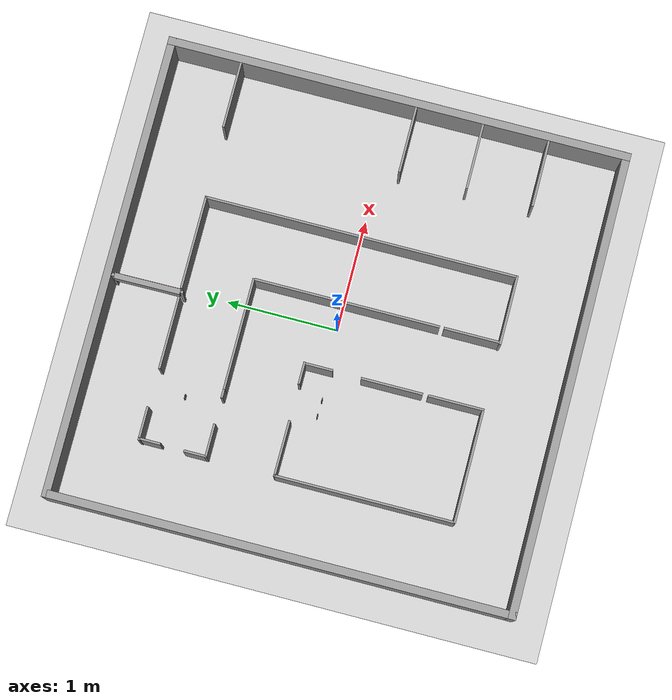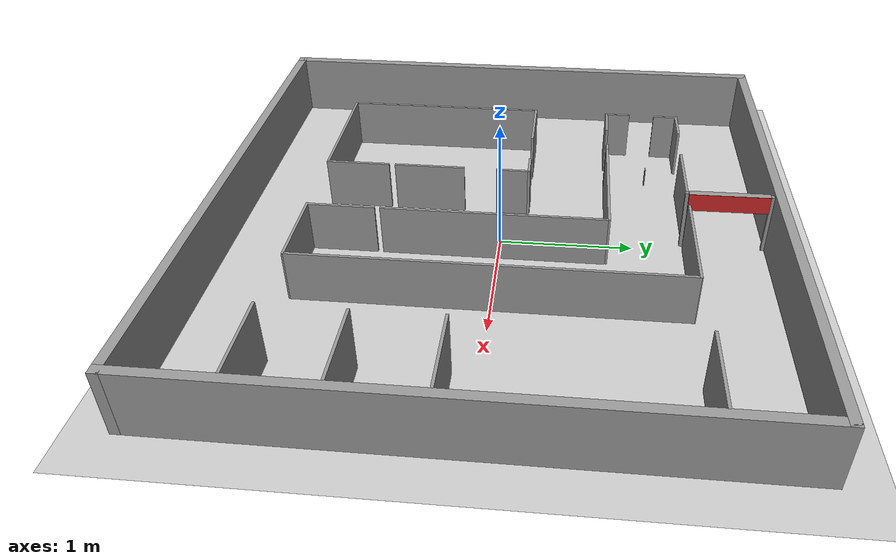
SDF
<sdf version="1.7">
 <world name="default">
  <model name="ground_plane">
   <static>1</static>
   <link name="link">
    <collision name="collision">
     <geometry><plane><normal>0 0 1</normal><size>100 100</size></plane></geometry>
     <surface>
      <contact><collide_bitmask>65535</collide_bitmask></contact>
      <friction><ode><mu>100</mu><mu2>50</mu2></ode></friction>
     </surface>
    </collision>
    <visual name="visual">
     <cast_shadows>0</cast_shadows>
     <geometry><plane><normal>0 0 1</normal><size>4.2 4.2</size></plane></geometry>
     <material><script><uri>file:///home/ros1/桌面/2/png1.material</uri><name>png1</name></script></material>
    </visual>
   </link>
  </model>
  <model name="F1">
   <link name="link_0">
    <inertial>
     <mass>1</mass>
     <inertia>
      <ixx>0.166667</ixx>
      <ixy>0</ixy>
      <ixz>0</ixz>
      <iyy>0.166667</iyy>
      <iyz>0</iyz>
      <izz>0.166667</izz>
     </inertia>
    </inertial>
    <pose>0 -0.0015 -0 0 -0 0</pose>
    <visual name="visual">
     <geometry><box><size>0.04 0.005 0.15</size></box></geometry>
     <material>
      <lighting>1</lighting>
      <script><uri>file://media/materials/scripts/gazebo.material</uri><name>Gazebo/Grey</name></script>
      <shader type="pixel"><normal_map>__default__</normal_map></shader>
      <ambient>0.3 0.3 0.3 1</ambient>
      <diffuse>0.7 0.7 0.7 1</diffuse>
      <specular>0.01 0.01 0.01 1</specular>
      <emissive>0 0 0 1</emissive>
     </material>
    </visual>
    <collision name="collision">
     <geometry><box><size>0.04 0.005 0.15</size></box></geometry>
     <surface>
      <friction>
       <ode><mu>1</mu><mu2>1</mu2><fdir1>0 0 0</fdir1><slip1>0</slip1><slip2>0</slip2></ode>
       <torsional>
        <coefficient>1</coefficient>
        <patch_radius>0</patch_radius>
        <surface_radius>0</surface_radius>
        <use_patch_radius>1</use_patch_radius>
        <ode><slip>0</slip></ode>
       </torsional>
      </friction>
      <bounce><restitution_coefficient>0</restitution_coefficient><threshold>1e+06</threshold></bounce>
      <contact>
       <collide_without_contact>0</collide_without_contact>
       <collide_without_contact_bitmask>1</collide_without_contact_bitmask>
       <collide_bitmask>1</collide_bitmask>
       <ode>
        <soft_cfm>0</soft_cfm>
        <soft_erp>0.2</soft_erp>
        <kp>1e+13</kp>
        <kd>1</kd>
        <max_vel>0.01</max_vel>
        <min_depth>0</min_depth>
       </ode>
       <bullet>
        <split_impulse>1</split_impulse>
        <split_impulse_penetration_threshold>-0.01</split_impulse_penetration_threshold>
        <soft_cfm>0</soft_cfm>
        <soft_erp>0.2</soft_erp>
        <kp>1e+13</kp>
        <kd>1</kd>
       </bullet>
      </contact>
     </surface>
    </collision>
   </link>
   <link name="link_4">
    <inertial>
     <mass>1</mass>
     <inertia>
      <ixx>0.166667</ixx>
      <ixy>0</ixy>
      <ixz>0</ixz>
      <iyy>0.166667</iyy>
      <iyz>0</iyz>
      <izz>0.166667</izz>
     </inertia>
    </inertial>
    <pose>0 0.0015 -0 0 -0 0</pose>
    <visual name="visual">
     <geometry><box><size>0.04 0.001 0.15</size></box></geometry>
     <material>
      <script><uri>file:///home/ros1/model_editor_models/F1/F1.material</uri><name>F1</name></script>
     </material>
    </visual>
    <collision name="collision">
     <geometry><box><size>0.04 0.001 0.15</size></box></geometry>
     <surface>
      <friction>
       <ode><mu>1</mu><mu2>1</mu2><fdir1>0 0 0</fdir1><slip1>0</slip1><slip2>0</slip2></ode>
       <torsional>
        <coefficient>1</coefficient>
        <patch_radius>0</patch_radius>
        <surface_radius>0</surface_radius>
        <use_patch_radius>1</use_patch_radius>
        <ode><slip>0</slip></ode>
       </torsional>
      </friction>
      <bounce><restitution_coefficient>0</restitution_coefficient><threshold>1e+06</threshold></bounce>
      <contact>
       <collide_without_contact>0</collide_without_contact>
       <collide_without_contact_bitmask>1</collide_without_contact_bitmask>
       <collide_bitmask>1</collide_bitmask>
       <ode>
        <soft_cfm>0</soft_cfm>
        <soft_erp>0.2</soft_erp>
        <kp>1e+13</kp>
        <kd>1</kd>
        <max_vel>0.01</max_vel>
        <min_depth>0</min_depth>
       </ode>
       <bullet>
        <split_impulse>1</split_impulse>
        <split_impulse_penetration_threshold>-0.01</split_impulse_penetration_threshold>
        <soft_cfm>0</soft_cfm>
        <soft_erp>0.2</soft_erp>
        <kp>1e+13</kp>
        <kd>1</kd>
       </bullet>
      </contact>
     </surface>
    </collision>
   </link>
   <static>0</static>
   <pose>-0.916044 1.13743 0.07499 -3e-06 -3e-06 -4.1e-05</pose>
  </model>
  <model name="man-10">
   <link name="link_0">
    <inertial>
     <mass>1</mass>
     <inertia>
      <ixx>0.166667</ixx>
      <ixy>0</ixy>
      <ixz>0</ixz>
      <iyy>0.166667</iyy>
      <iyz>0</iyz>
      <izz>0.166667</izz>
     </inertia>
    </inertial>
    <pose>0 -0.0015 -0 0 -0 0</pose>
    <visual name="visual">
     <geometry><box><size>0.04 0.005 0.15</size></box></geometry>
     <material>
      <lighting>1</lighting>
      <script><uri>file://media/materials/scripts/gazebo.material</uri><name>Gazebo/Grey</name></script>
      <shader type="pixel"><normal_map>__default__</normal_map></shader>
      <ambient>0.3 0.3 0.3 1</ambient>
      <diffuse>0.7 0.7 0.7 1</diffuse>
      <specular>0.01 0.01 0.01 1</specular>
      <emissive>0 0 0 1</emissive>
     </material>
    </visual>
    <collision name="collision">
     <geometry><box><size>0.04 0.005 0.15</size></box></geometry>
     <surface>
      <friction>
       <ode><mu>1</mu><mu2>1</mu2><fdir1>0 0 0</fdir1><slip1>0</slip1><slip2>0</slip2></ode>
       <torsional>
        <coefficient>1</coefficient>
        <patch_radius>0</patch_radius>
        <surface_radius>0</surface_radius>
        <use_patch_radius>1</use_patch_radius>
        <ode><slip>0</slip></ode>
       </torsional>
      </friction>
      <bounce><restitution_coefficient>0</restitution_coefficient><threshold>1e+06</threshold></bounce>
      <contact>
       <collide_without_contact>0</collide_without_contact>
       <collide_without_contact_bitmask>1</collide_without_contact_bitmask>
       <collide_bitmask>1</collide_bitmask>
       <ode>
        <soft_cfm>0</soft_cfm>
        <soft_erp>0.2</soft_erp>
        <kp>1e+13</kp>
        <kd>1</kd>
        <max_vel>0.01</max_vel>
        <min_depth>0</min_depth>
       </ode>
       <bullet>
        <split_impulse>1</split_impulse>
        <split_impulse_penetration_threshold>-0.01</split_impulse_penetration_threshold>
        <soft_cfm>0</soft_cfm>
        <soft_erp>0.2</soft_erp>
        <kp>1e+13</kp>
        <kd>1</kd>
       </bullet>
      </contact>
     </surface>
    </collision>
   </link>
   <link name="link_4">
    <inertial>
     <mass>1</mass>
     <inertia>
      <ixx>0.166667</ixx>
      <ixy>0</ixy>
      <ixz>0</ixz>
      <iyy>0.166667</iyy>
      <iyz>0</iyz>
      <izz>0.166667</izz>
     </inertia>
    </inertial>
    <pose>0 0.0015 -0 0 -0 0</pose>
    <visual name="visual">
     <geometry><box><size>0.04 0.001 0.15</size></box></geometry>
     <material>
      <script><uri>file:///home/ros1/model_editor_models/man-10/man_10.material</uri><name>man_10</name></script>
     </material>
    </visual>
    <collision name="collision">
     <geometry><box><size>0.04 0.001 0.15</size></box></geometry>
     <surface>
      <friction>
       <ode><mu>1</mu><mu2>1</mu2><fdir1>0 0 0</fdir1><slip1>0</slip1><slip2>0</slip2></ode>
       <torsional>
        <coefficient>1</coefficient>
        <patch_radius>0</patch_radius>
        <surface_radius>0</surface_radius>
        <use_patch_radius>1</use_patch_radius>
        <ode><slip>0</slip></ode>
       </torsional>
      </friction>
      <bounce><restitution_coefficient>0</restitution_coefficient><threshold>1e+06</threshold></bounce>
      <contact>
       <collide_without_contact>0</collide_without_contact>
       <collide_without_contact_bitmask>1</collide_without_contact_bitmask>
       <collide_bitmask>1</collide_bitmask>
       <ode>
        <soft_cfm>0</soft_cfm>
        <soft_erp>0.2</soft_erp>
        <kp>1e+13</kp>
        <kd>1</kd>
        <max_vel>0.01</max_vel>
        <min_depth>0</min_depth>
       </ode>
       <bullet>
        <split_impulse>1</split_impulse>
        <split_impulse_penetration_threshold>-0.01</split_impulse_penetration_threshold>
        <soft_cfm>0</soft_cfm>
        <soft_erp>0.2</soft_erp>
        <kp>1e+13</kp>
        <kd>1</kd>
       </bullet>
      </contact>
     </surface>
    </collision>
   </link>
   <static>0</static>
   <pose>-0.645915 -0.027958 0.075 1.3e-05 -1.6e-05 5.8e-05</pose>
  </model>
  <model name="leg">
   <link name="link_0">
    <inertial>
     <mass>1</mass>
     <inertia>
      <ixx>0.166667</ixx>
      <ixy>0</ixy>
      <ixz>0</ixz>
      <iyy>0.166667</iyy>
      <iyz>0</iyz>
      <izz>0.166667</izz>
     </inertia>
    </inertial>
    <visual name="visual">
     <geometry><box><size>0.025 0.025 0.48</size></box></geometry>
     <material>
      <lighting>1</lighting>
      <script><uri>file://media/materials/scripts/gazebo.material</uri><name>Gazebo/Grey</name></script>
      <shader type="pixel"><normal_map>__default__</normal_map></shader>
      <ambient>0.3 0.3 0.3 1</ambient>
      <diffuse>0.7 0.7 0.7 1</diffuse>
      <specular>0.01 0.01 0.01 1</specular>
      <emissive>0 0 0 1</emissive>
     </material>
    </visual>
    <collision name="collision">
     <geometry><box><size>0.025 0.025 0.48</size></box></geometry>
     <surface>
      <friction>
       <ode><mu>1</mu><mu2>1</mu2><fdir1>0 0 0</fdir1><slip1>0</slip1><slip2>0</slip2></ode>
       <torsional>
        <coefficient>1</coefficient>
        <patch_radius>0</patch_radius>
        <surface_radius>0</surface_radius>
        <use_patch_radius>1</use_patch_radius>
        <ode><slip>0</slip></ode>
       </torsional>
      </friction>
      <bounce><restitution_coefficient>0</restitution_coefficient><threshold>1e+06</threshold></bounce>
      <contact>
       <collide_without_contact>0</collide_without_contact>
       <collide_without_contact_bitmask>1</collide_without_contact_bitmask>
       <collide_bitmask>1</collide_bitmask>
       <ode>
        <soft_cfm>0</soft_cfm>
        <soft_erp>0.2</soft_erp>
        <kp>1e+13</kp>
        <kd>1</kd>
        <max_vel>0.01</max_vel>
        <min_depth>0</min_depth>
       </ode>
       <bullet>
        <split_impulse>1</split_impulse>
        <split_impulse_penetration_threshold>-0.01</split_impulse_penetration_threshold>
        <soft_cfm>0</soft_cfm>
        <soft_erp>0.2</soft_erp>
        <kp>1e+13</kp>
        <kd>1</kd>
       </bullet>
      </contact>
     </surface>
    </collision>
   </link>
   <static>0</static>
   <pose>-0.081419 1.9836 0.240001 -6e-06 6.5e-05 0.006127</pose>
  </model>
  <model name="leg_0">
   <link name="link_0">
    <inertial>
     <mass>1</mass>
     <inertia>
      <ixx>0.166667</ixx>
      <ixy>0</ixy>
      <ixz>0</ixz>
      <iyy>0.166667</iyy>
      <iyz>0</iyz>
      <izz>0.166667</izz>
     </inertia>
    </inertial>
    <visual name="visual">
     <geometry><box><size>0.025 0.025 0.48</size></box></geometry>
     <material>
      <lighting>1</lighting>
      <script><uri>file://media/materials/scripts/gazebo.material</uri><name>Gazebo/Grey</name></script>
      <shader type="pixel"><normal_map>__default__</normal_map></shader>
      <ambient>0.3 0.3 0.3 1</ambient>
      <diffuse>0.7 0.7 0.7 1</diffuse>
      <specular>0.01 0.01 0.01 1</specular>
      <emissive>0 0 0 1</emissive>
     </material>
    </visual>
    <collision name="collision">
     <geometry><box><size>0.025 0.025 0.48</size></box></geometry>
     <surface>
      <friction>
       <ode><mu>1</mu><mu2>1</mu2><fdir1>0 0 0</fdir1><slip1>0</slip1><slip2>0</slip2></ode>
       <torsional>
        <coefficient>1</coefficient>
        <patch_radius>0</patch_radius>
        <surface_radius>0</surface_radius>
        <use_patch_radius>1</use_patch_radius>
        <ode><slip>0</slip></ode>
       </torsional>
      </friction>
      <bounce><restitution_coefficient>0</restitution_coefficient><threshold>1e+06</threshold></bounce>
      <contact>
       <collide_without_contact>0</collide_without_contact>
       <collide_without_contact_bitmask>1</collide_without_contact_bitmask>
       <collide_bitmask>1</collide_bitmask>
       <ode>
        <soft_cfm>0</soft_cfm>
        <soft_erp>0.2</soft_erp>
        <kp>1e+13</kp>
        <kd>1</kd>
        <max_vel>0.01</max_vel>
        <min_depth>0</min_depth>
       </ode>
       <bullet>
        <split_impulse>1</split_impulse>
        <split_impulse_penetration_threshold>-0.01</split_impulse_penetration_threshold>
        <soft_cfm>0</soft_cfm>
        <soft_erp>0.2</soft_erp>
        <kp>1e+13</kp>
        <kd>1</kd>
       </bullet>
      </contact>
     </surface>
    </collision>
   </link>
   <static>0</static>
   <pose>-0.079676 1.36924 0.240138 0.012552 0 0.006006</pose>
  </model>
  <model name="ryg3">
   <link name="link_0">
    <inertial>
     <mass>1</mass>
     <inertia>
      <ixx>0.166667</ixx>
      <ixy>0</ixy>
      <ixz>0</ixz>
      <iyy>0.166667</iyy>
      <iyz>0</iyz>
      <izz>0.166667</izz>
     </inertia>
    </inertial>
    <pose>0 0 0.0725 0 -0 0</pose>
    <visual name="visual">
     <geometry><box><size>0.59 0.05 0.14</size></box></geometry>
     <material>
      <lighting>1</lighting>
      <script><uri>file://media/materials/scripts/gazebo.material</uri><name>Gazebo/Grey</name></script>
      <shader type="pixel"><normal_map>__default__</normal_map></shader>
      <ambient>0.3 0.3 0.3 1</ambient>
      <diffuse>0.7 0.7 0.7 1</diffuse>
      <specular>0.01 0.01 0.01 1</specular>
      <emissive>0 0 0 1</emissive>
     </material>
    </visual>
    <collision name="collision">
     <geometry><box><size>0.59 0.05 0.14</size></box></geometry>
     <surface>
      <friction>
       <ode><mu>1</mu><mu2>1</mu2><fdir1>0 0 0</fdir1><slip1>0</slip1><slip2>0</slip2></ode>
       <torsional>
        <coefficient>1</coefficient>
        <patch_radius>0</patch_radius>
        <surface_radius>0</surface_radius>
        <use_patch_radius>1</use_patch_radius>
        <ode><slip>0</slip></ode>
       </torsional>
      </friction>
      <bounce><restitution_coefficient>0</restitution_coefficient><threshold>1e+06</threshold></bounce>
      <contact>
       <collide_without_contact>0</collide_without_contact>
       <collide_without_contact_bitmask>1</collide_without_contact_bitmask>
       <collide_bitmask>1</collide_bitmask>
       <ode>
        <soft_cfm>0</soft_cfm>
        <soft_erp>0.2</soft_erp>
        <kp>1e+13</kp>
        <kd>1</kd>
        <max_vel>0.01</max_vel>
        <min_depth>0</min_depth>
       </ode>
       <bullet>
        <split_impulse>1</split_impulse>
        <split_impulse_penetration_threshold>-0.01</split_impulse_penetration_threshold>
        <soft_cfm>0</soft_cfm>
        <soft_erp>0.2</soft_erp>
        <kp>1e+13</kp>
        <kd>1</kd>
       </bullet>
      </contact>
     </surface>
    </collision>
   </link>
   <link name="link_1">
    <inertial>
     <mass>1</mass>
     <inertia>
      <ixx>0.166667</ixx>
      <ixy>0</ixy>
      <ixz>0</ixz>
      <iyy>0.166667</iyy>
      <iyz>0</iyz>
      <izz>0.166667</izz>
     </inertia>
    </inertial>
    <pose>0 0.0255 0.0725 0 -0 0</pose>
    <visual name="visual">
     <geometry><box><size>0.59 0.001 0.14</size></box></geometry>
     <material>
      <lighting>1</lighting>
      <script>
       <uri>file:///home/ros1/ce/src/ceshi3/models/traffic_light_sync/traffic_light.material</uri>
       <name>Ceshi3Traffic/Red</name>
      </script>
     </material>
    </visual>
    <collision name="collision">
     <geometry><box><size>0.59 0.001 0.14</size></box></geometry>
     <surface>
      <friction>
       <ode><mu>1</mu><mu2>1</mu2><fdir1>0 0 0</fdir1><slip1>0</slip1><slip2>0</slip2></ode>
       <torsional>
        <coefficient>1</coefficient>
        <patch_radius>0</patch_radius>
        <surface_radius>0</surface_radius>
        <use_patch_radius>1</use_patch_radius>
        <ode><slip>0</slip></ode>
       </torsional>
      </friction>
      <bounce><restitution_coefficient>0</restitution_coefficient><threshold>1e+06</threshold></bounce>
      <contact>
       <collide_without_contact>0</collide_without_contact>
       <collide_without_contact_bitmask>1</collide_without_contact_bitmask>
       <collide_bitmask>1</collide_bitmask>
       <ode>
        <soft_cfm>0</soft_cfm>
        <soft_erp>0.2</soft_erp>
        <kp>1e+13</kp>
        <kd>1</kd>
        <max_vel>0.01</max_vel>
        <min_depth>0</min_depth>
       </ode>
       <bullet>
        <split_impulse>1</split_impulse>
        <split_impulse_penetration_threshold>-0.01</split_impulse_penetration_threshold>
        <soft_cfm>0</soft_cfm>
        <soft_erp>0.2</soft_erp>
        <kp>1e+13</kp>
        <kd>1</kd>
       </bullet>
      </contact>
     </surface>
    </collision>
   </link>
   <static>1</static>
   <pose>-0.082742 1.67546 0.338477 0 0 -1.56479</pose>
  </model>
  <model name="man-2-2">
   <link name="link_0">
    <inertial>
     <mass>1</mass>
     <inertia>
      <ixx>0.166667</ixx>
      <ixy>0</ixy>
      <ixz>0</ixz>
      <iyy>0.166667</iyy>
      <iyz>0</iyz>
      <izz>0.166667</izz>
     </inertia>
    </inertial>
    <pose>0 -0.0015 -0 0 -0 0</pose>
    <visual name="visual">
     <geometry><box><size>0.04 0.005 0.15</size></box></geometry>
     <material>
      <lighting>1</lighting>
      <script><uri>file://media/materials/scripts/gazebo.material</uri><name>Gazebo/Grey</name></script>
      <shader type="pixel"><normal_map>__default__</normal_map></shader>
      <ambient>0.3 0.3 0.3 1</ambient>
      <diffuse>0.7 0.7 0.7 1</diffuse>
      <specular>0.01 0.01 0.01 1</specular>
      <emissive>0 0 0 1</emissive>
     </material>
    </visual>
    <collision name="collision">
     <geometry><box><size>0.04 0.005 0.15</size></box></geometry>
     <surface>
      <friction>
       <ode><mu>1</mu><mu2>1</mu2><fdir1>0 0 0</fdir1><slip1>0</slip1><slip2>0</slip2></ode>
       <torsional>
        <coefficient>1</coefficient>
        <patch_radius>0</patch_radius>
        <surface_radius>0</surface_radius>
        <use_patch_radius>1</use_patch_radius>
        <ode><slip>0</slip></ode>
       </torsional>
      </friction>
      <bounce><restitution_coefficient>0</restitution_coefficient><threshold>1e+06</threshold></bounce>
      <contact>
       <collide_without_contact>0</collide_without_contact>
       <collide_without_contact_bitmask>1</collide_without_contact_bitmask>
       <collide_bitmask>1</collide_bitmask>
       <ode>
        <soft_cfm>0</soft_cfm>
        <soft_erp>0.2</soft_erp>
        <kp>1e+13</kp>
        <kd>1</kd>
        <max_vel>0.01</max_vel>
        <min_depth>0</min_depth>
       </ode>
       <bullet>
        <split_impulse>1</split_impulse>
        <split_impulse_penetration_threshold>-0.01</split_impulse_penetration_threshold>
        <soft_cfm>0</soft_cfm>
        <soft_erp>0.2</soft_erp>
        <kp>1e+13</kp>
        <kd>1</kd>
       </bullet>
      </contact>
     </surface>
    </collision>
   </link>
   <link name="link_4">
    <inertial>
     <mass>1</mass>
     <inertia>
      <ixx>0.166667</ixx>
      <ixy>0</ixy>
      <ixz>0</ixz>
      <iyy>0.166667</iyy>
      <iyz>0</iyz>
      <izz>0.166667</izz>
     </inertia>
    </inertial>
    <pose>0 0.0015 -0 0 -0 0</pose>
    <visual name="visual">
     <geometry><box><size>0.04 0.001 0.15</size></box></geometry>
     <material>
      <script><uri>file:///home/ros1/model_editor_models/man-22/man_22.material</uri><name>man_22</name></script>
     </material>
    </visual>
    <collision name="collision">
     <geometry><box><size>0.04 0.001 0.15</size></box></geometry>
     <surface>
      <friction>
       <ode><mu>1</mu><mu2>1</mu2><fdir1>0 0 0</fdir1><slip1>0</slip1><slip2>0</slip2></ode>
       <torsional>
        <coefficient>1</coefficient>
        <patch_radius>0</patch_radius>
        <surface_radius>0</surface_radius>
        <use_patch_radius>1</use_patch_radius>
        <ode><slip>0</slip></ode>
       </torsional>
      </friction>
      <bounce><restitution_coefficient>0</restitution_coefficient><threshold>1e+06</threshold></bounce>
      <contact>
       <collide_without_contact>0</collide_without_contact>
       <collide_without_contact_bitmask>1</collide_without_contact_bitmask>
       <collide_bitmask>1</collide_bitmask>
       <ode>
        <soft_cfm>0</soft_cfm>
        <soft_erp>0.2</soft_erp>
        <kp>1e+13</kp>
        <kd>1</kd>
        <max_vel>0.01</max_vel>
        <min_depth>0</min_depth>
       </ode>
       <bullet>
        <split_impulse>1</split_impulse>
        <split_impulse_penetration_threshold>-0.01</split_impulse_penetration_threshold>
        <soft_cfm>0</soft_cfm>
        <soft_erp>0.2</soft_erp>
        <kp>1e+13</kp>
        <kd>1</kd>
       </bullet>
      </contact>
     </surface>
    </collision>
   </link>
   <static>0</static>
   <pose>-0.790119 -0.02407 0.075 6e-06 6e-06 7.3e-05</pose>
  </model>
  <model name="wall_2">
   <pose>1.0193 0.0075 0 0 -0 0</pose>
   <link name="Wall_0">
    <collision name="Wall_0_Collision">
     <geometry><box><size>0.6 0.02 0.5</size></box></geometry>
     <pose>0 0 0.25 0 -0 0</pose>
    </collision>
    <visual name="Wall_0_Visual">
     <pose>0 0 0.25 0 -0 0</pose>
     <geometry><box><size>0.6 0.02 0.5</size></box></geometry>
     <material>
      <script><uri>file://media/materials/scripts/gazebo.material</uri><name>Gazebo/Grey</name></script>
      <ambient>1 1 1 1</ambient>
     </material>
     <meta><layer>0</layer></meta>
    </visual>
    <pose>0.695598 -1.38843 0 0 -0 0</pose>
   </link>
   <link name="Wall_3">
    <collision name="Wall_3_Collision">
     <geometry><box><size>0.6 0.02 0.5</size></box></geometry>
     <pose>0 0 0.25 0 -0 0</pose>
    </collision>
    <visual name="Wall_3_Visual">
     <pose>0 0 0.25 0 -0 0</pose>
     <geometry><box><size>0.6 0.02 0.5</size></box></geometry>
     <material>
      <script><uri>file://media/materials/scripts/gazebo.material</uri><name>Gazebo/Grey</name></script>
      <ambient>1 1 1 1</ambient>
     </material>
     <meta><layer>0</layer></meta>
    </visual>
    <pose>0.703067 -0.798055 0 0 -0 0</pose>
   </link>
   <link name="Wall_5">
    <collision name="Wall_5_Collision">
     <geometry><box><size>0.6 0.02 0.5</size></box></geometry>
     <pose>0 0 0.25 0 -0 0</pose>
    </collision>
    <visual name="Wall_5_Visual">
     <pose>0 0 0.25 0 -0 0</pose>
     <geometry><box><size>0.6 0.02 0.5</size></box></geometry>
     <material>
      <script><uri>file://media/materials/scripts/gazebo.material</uri><name>Gazebo/Grey</name></script>
      <ambient>1 1 1 1</ambient>
     </material>
     <meta><layer>0</layer></meta>
    </visual>
    <pose>0.695708 -0.195962 0 0 -0 0</pose>
   </link>
   <link name="Wall_7">
    <collision name="Wall_7_Collision">
     <geometry><box><size>0.6 0.02 0.5</size></box></geometry>
     <pose>0 0 0.25 0 -0 0</pose>
    </collision>
    <visual name="Wall_7_Visual">
     <pose>0 0 0.25 0 -0 0</pose>
     <geometry><box><size>0.6 0.02 0.5</size></box></geometry>
     <material>
      <script><uri>file://media/materials/scripts/gazebo.material</uri><name>Gazebo/Grey</name></script>
      <ambient>1 1 1 1</ambient>
     </material>
     <meta><layer>0</layer></meta>
    </visual>
    <pose>0.696479 1.38843 0 0 -0 0</pose>
   </link>
   <static>1</static>
  </model>
  <model name="wall_1">
   <pose>2.56261 0.68932 0 0 -0 0</pose>
   <link name="Wall_0">
    <collision name="Wall_0_Collision">
     <geometry><box><size>4.17 0.07 0.5</size></box></geometry>
     <pose>0 0 0.25 0 -0 0</pose>
    </collision>
    <visual name="Wall_0_Visual">
     <pose>0 0 0.25 0 -0 0</pose>
     <geometry><box><size>4.17 0.07 0.5</size></box></geometry>
     <material>
      <script><uri>file://media/materials/scripts/gazebo.material</uri><name>Gazebo/Grey</name></script>
      <ambient>1 1 1 1</ambient>
     </material>
     <meta><layer>0</layer></meta>
    </visual>
    <pose>-2.56497 1.342 0 0 -0 0</pose>
   </link>
   <link name="Wall_1">
    <collision name="Wall_1_Collision">
     <geometry><box><size>4.17 0.07 0.5</size></box></geometry>
     <pose>0 0 0.25 0 -0 0</pose>
    </collision>
    <visual name="Wall_1_Visual">
     <pose>0 0 0.25 0 -0 0</pose>
     <geometry><box><size>4.17 0.07 0.5</size></box></geometry>
     <material>
      <script><uri>file://media/materials/scripts/gazebo.material</uri><name>Gazebo/Grey</name></script>
      <ambient>1 1 1 1</ambient>
     </material>
     <meta><layer>0</layer></meta>
    </visual>
    <pose>-0.514971 -0.708 0 0 -0 -1.5708</pose>
   </link>
   <link name="Wall_2">
    <collision name="Wall_2_Collision">
     <geometry><box><size>4.17012 0.07 0.5</size></box></geometry>
     <pose>0 0 0.25 0 -0 0</pose>
    </collision>
    <visual name="Wall_2_Visual">
     <pose>0 0 0.25 0 -0 0</pose>
     <geometry><box><size>4.17012 0.07 0.5</size></box></geometry>
     <material>
      <script><uri>file://media/materials/scripts/gazebo.material</uri><name>Gazebo/Grey</name></script>
      <ambient>1 1 1 1</ambient>
     </material>
     <meta><layer>0</layer></meta>
    </visual>
    <pose>-2.56497 -2.758 0 0 -0 3.14159</pose>
   </link>
   <link name="Wall_3">
    <collision name="Wall_3_Collision">
     <geometry><box><size>4.17 0.07 0.5</size></box></geometry>
     <pose>0 0 0.25 0 -0 0</pose>
    </collision>
    <visual name="Wall_3_Visual">
     <pose>0 0 0.25 0 -0 0</pose>
     <geometry><box><size>4.17 0.07 0.5</size></box></geometry>
     <material>
      <script><uri>file://media/materials/scripts/gazebo.material</uri><name>Gazebo/Grey</name></script>
      <ambient>1 1 1 1</ambient>
     </material>
     <meta><layer>0</layer></meta>
    </visual>
    <pose>-4.61497 -0.708 0 0 -0 1.5708</pose>
   </link>
   <static>1</static>
  </model>
  <model name="wall_3">
   <pose>-0.305532 -0.00432 0 0 -0 0</pose>
   <link name="Wall_0">
    <collision name="Wall_0_Collision">
     <geometry><box><size>1 0.02 0.4</size></box></geometry>
     <pose>0 0 0.2 0 -0 0</pose>
    </collision>
    <visual name="Wall_0_Visual">
     <pose>0 0 0.2 0 -0 0</pose>
     <geometry><box><size>1 0.02 0.4</size></box></geometry>
     <material>
      <script><uri>file://media/materials/scripts/gazebo.material</uri><name>Gazebo/Grey</name></script>
      <ambient>1 1 1 1</ambient>
     </material>
     <meta><layer>0</layer></meta>
    </visual>
    <pose>0.009925 0.806476 0 0 -0 0</pose>
   </link>
   <link name="Wall_12">
    <collision name="Wall_12_Collision">
     <geometry><box><size>0.2 0.02 0.4</size></box></geometry>
     <pose>0 0 0.2 0 -0 0</pose>
    </collision>
    <visual name="Wall_12_Visual">
     <pose>0 0 0.2 0 -0 0</pose>
     <geometry><box><size>0.2 0.02 0.4</size></box></geometry>
     <material>
      <script><uri>file://media/materials/scripts/gazebo.material</uri><name>Gazebo/Grey</name></script>
      <ambient>1 1 1 1</ambient>
     </material>
     <meta><layer>0</layer></meta>
    </visual>
    <pose>-1.08508 1.31148 0 0 -0 1.5708</pose>
   </link>
   <link name="Wall_14">
    <collision name="Wall_14_Collision">
     <geometry><box><size>0.3 0.02 0.4</size></box></geometry>
     <pose>0 0 0.2 0 -0 0</pose>
    </collision>
    <visual name="Wall_14_Visual">
     <pose>0 0 0.2 0 -0 0</pose>
     <geometry><box><size>0.3 0.02 0.4</size></box></geometry>
     <material>
      <script><uri>file://media/materials/scripts/gazebo.material</uri><name>Gazebo/Grey</name></script>
      <ambient>1 1 1 1</ambient>
     </material>
     <meta><layer>0</layer></meta>
    </visual>
    <pose>-0.950075 1.40221 0 0 -0 0</pose>
   </link>
   <link name="Wall_16">
    <collision name="Wall_16_Collision">
     <geometry><box><size>0.65 0.02 0.4</size></box></geometry>
     <pose>0 0 0.2 0 -0 0</pose>
    </collision>
    <visual name="Wall_16_Visual">
     <pose>0 0 0.2 0 -0 0</pose>
     <geometry><box><size>0.65 0.02 0.4</size></box></geometry>
     <material>
      <script><uri>file://media/materials/scripts/gazebo.material</uri><name>Gazebo/Grey</name></script>
      <ambient>1 1 1 1</ambient>
     </material>
     <meta><layer>0</layer></meta>
    </visual>
    <pose>-0.131954 1.39285 0 0 -0 0</pose>
   </link>
   <link name="Wall_2">
    <collision name="Wall_2_Collision">
     <geometry><box><size>0.3 0.02 0.4</size></box></geometry>
     <pose>0 0 0.2 0 -0 0</pose>
    </collision>
    <visual name="Wall_2_Visual">
     <pose>0 0 0.2 0 -0 0</pose>
     <geometry><box><size>0.3 0.02 0.4</size></box></geometry>
     <material>
      <script><uri>file://media/materials/scripts/gazebo.material</uri><name>Gazebo/Grey</name></script>
      <ambient>1 1 1 1</ambient>
     </material>
     <meta><layer>0</layer></meta>
    </visual>
    <pose>-0.950075 0.807345 0 0 -0 0</pose>
   </link>
   <link name="Wall_21">
    <collision name="Wall_21_Collision">
     <geometry><box><size>0.84 0.02 0.4</size></box></geometry>
     <pose>0 0 0.2 0 -0 0</pose>
    </collision>
    <visual name="Wall_21_Visual">
     <pose>0 0 0.2 0 -0 0</pose>
     <geometry><box><size>0.84 0.02 0.4</size></box></geometry>
     <material>
      <script><uri>file://media/materials/scripts/gazebo.material</uri><name>Gazebo/Grey</name></script>
      <ambient>1 1 1 1</ambient>
     </material>
     <meta><layer>0</layer></meta>
    </visual>
    <pose>0.690049 1.39491 0 0 -0 0</pose>
   </link>
   <link name="Wall_25">
    <collision name="Wall_25_Collision">
     <geometry><box><size>2.8 0.02 0.4</size></box></geometry>
     <pose>0 0 0.2 0 -0 0</pose>
    </collision>
    <visual name="Wall_25_Visual">
     <pose>0 0 0.2 0 -0 0</pose>
     <geometry><box><size>2.8 0.02 0.4</size></box></geometry>
     <material>
      <script><uri>file://media/materials/scripts/gazebo.material</uri><name>Gazebo/Grey</name></script>
      <ambient>1 1 1 1</ambient>
     </material>
     <meta><layer>0</layer></meta>
    </visual>
    <pose>1.10063 -0.000322 0 0 -0 -1.5708</pose>
   </link>
   <link name="Wall_27">
    <collision name="Wall_27_Collision">
     <geometry><box><size>0.62 0.02 0.4</size></box></geometry>
     <pose>0 0 0.2 0 -0 0</pose>
    </collision>
    <visual name="Wall_27_Visual">
     <pose>0 0 0.2 0 -0 0</pose>
     <geometry><box><size>0.62 0.02 0.4</size></box></geometry>
     <material>
      <script><uri>file://media/materials/scripts/gazebo.material</uri><name>Gazebo/Grey</name></script>
      <ambient>1 1 1 1</ambient>
     </material>
     <meta><layer>0</layer></meta>
    </visual>
    <pose>0.79946 -1.40221 0 0 -0 0</pose>
   </link>
   <link name="Wall_29">
    <collision name="Wall_29_Collision">
     <geometry><box><size>1.66 0.02 0.4</size></box></geometry>
     <pose>0 0 0.2 0 -0 0</pose>
    </collision>
    <visual name="Wall_29_Visual">
     <pose>0 0 0.2 0 -0 0</pose>
     <geometry><box><size>1.66 0.02 0.4</size></box></geometry>
     <material>
      <script><uri>file://media/materials/scripts/gazebo.material</uri><name>Gazebo/Grey</name></script>
      <ambient>1 1 1 1</ambient>
     </material>
     <meta><layer>0</layer></meta>
    </visual>
    <pose>0.506032 -0.02944 0 0 -0 1.5708</pose>
   </link>
   <link name="Wall_31">
    <collision name="Wall_31_Collision">
     <geometry><box><size>0.5 0.02 0.4</size></box></geometry>
     <pose>0 0 0.2 0 -0 0</pose>
    </collision>
    <visual name="Wall_31_Visual">
     <pose>0 0 0.2 0 -0 0</pose>
     <geometry><box><size>0.5 0.02 0.4</size></box></geometry>
     <material>
      <script><uri>file://media/materials/scripts/gazebo.material</uri><name>Gazebo/Grey</name></script>
      <ambient>1 1 1 1</ambient>
     </material>
     <meta><layer>0</layer></meta>
    </visual>
    <pose>0.505135 -1.14761 0 0 -0 1.5708</pose>
   </link>
   <link name="Wall_33">
    <collision name="Wall_33_Collision">
     <geometry><box><size>0.5 0.02 0.4</size></box></geometry>
     <pose>0 0 0.2 0 -0 0</pose>
    </collision>
    <visual name="Wall_33_Visual">
     <pose>0 0 0.2 0 -0 0</pose>
     <geometry><box><size>0.5 0.02 0.4</size></box></geometry>
     <material>
      <script><uri>file://media/materials/scripts/gazebo.material</uri><name>Gazebo/Grey</name></script>
      <ambient>1 1 1 1</ambient>
     </material>
     <meta><layer>0</layer></meta>
    </visual>
    <pose>-0.858577 0.192367 0 0 -0 3.13489</pose>
   </link>
   <link name="Wall_35">
    <collision name="Wall_35_Collision">
     <geometry><box><size>0.2 0.02 0.4</size></box></geometry>
     <pose>0 0 0.2 0 -0 0</pose>
    </collision>
    <visual name="Wall_35_Visual">
     <pose>0 0 0.2 0 -0 0</pose>
     <geometry><box><size>0.2 0.02 0.4</size></box></geometry>
     <material>
      <script><uri>file://media/materials/scripts/gazebo.material</uri><name>Gazebo/Grey</name></script>
      <ambient>1 1 1 1</ambient>
     </material>
     <meta><layer>0</layer></meta>
    </visual>
    <pose>-0.184492 0.193482 0 0 -0 0</pose>
   </link>
   <link name="Wall_37">
    <collision name="Wall_37_Collision">
     <geometry><box><size>0.25 0.02 0.4</size></box></geometry>
     <pose>0 0 0.2 0 -0 0</pose>
    </collision>
    <visual name="Wall_37_Visual">
     <pose>0 0 0.2 0 -0 0</pose>
     <geometry><box><size>0.25 0.02 0.4</size></box></geometry>
     <material>
      <script><uri>file://media/materials/scripts/gazebo.material</uri><name>Gazebo/Grey</name></script>
      <ambient>1 1 1 1</ambient>
     </material>
     <meta><layer>0</layer></meta>
    </visual>
    <pose>-0.095872 0.063975 0 0 -0 -1.5708</pose>
   </link>
   <link name="Wall_41">
    <collision name="Wall_41_Collision">
     <geometry><box><size>0.55 0.02 0.4</size></box></geometry>
     <pose>0 0 0.2 0 -0 0</pose>
    </collision>
    <visual name="Wall_41_Visual">
     <pose>0 0 0.2 0 -0 0</pose>
     <geometry><box><size>0.55 0.02 0.4</size></box></geometry>
     <material>
      <script><uri>file://media/materials/scripts/gazebo.material</uri><name>Gazebo/Grey</name></script>
      <ambient>1 1 1 1</ambient>
     </material>
     <meta><layer>0</layer></meta>
    </visual>
    <pose>-0.099056 -0.588401 0 0 -0 -1.5708</pose>
   </link>
   <link name="Wall_45">
    <collision name="Wall_45_Collision">
     <geometry><box><size>1.6 0.02 0.4</size></box></geometry>
     <pose>0 0 0.2 0 -0 0</pose>
    </collision>
    <visual name="Wall_45_Visual">
     <pose>0 0 0.2 0 -0 0</pose>
     <geometry><box><size>1.6 0.02 0.4</size></box></geometry>
     <material>
      <script><uri>file://media/materials/scripts/gazebo.material</uri><name>Gazebo/Grey</name></script>
      <ambient>1 1 1 1</ambient>
     </material>
     <meta><layer>0</layer></meta>
    </visual>
    <pose>-1.10063 -0.602498 0 0 -0 -1.5708</pose>
   </link>
   <link name="Wall_47">
    <collision name="Wall_47_Collision">
     <geometry><box><size>1 0.02 0.4</size></box></geometry>
     <pose>0 0 0.2 0 -0 0</pose>
    </collision>
    <visual name="Wall_47_Visual">
     <pose>0 0 0.2 0 -0 0</pose>
     <geometry><box><size>1 0.02 0.4</size></box></geometry>
     <material>
      <script><uri>file://media/materials/scripts/gazebo.material</uri><name>Gazebo/Grey</name></script>
      <ambient>1 1 1 1</ambient>
     </material>
     <meta><layer>0</layer></meta>
    </visual>
    <pose>-0.60666 -1.40009 0 0 -0 0</pose>
   </link>
   <link name="Wall_50">
    <collision name="Wall_50_Collision">
     <geometry><box><size>0.5 0.02 0.4</size></box></geometry>
     <pose>0 0 0.2 0 -0 0</pose>
    </collision>
    <visual name="Wall_50_Visual">
     <pose>0 0 0.2 0 -0 0</pose>
     <geometry><box><size>0.5 0.02 0.4</size></box></geometry>
     <material>
      <script><uri>file://media/materials/scripts/gazebo.material</uri><name>Gazebo/Grey</name></script>
      <ambient>1 1 1 1</ambient>
     </material>
     <meta><layer>0</layer></meta>
    </visual>
    <pose>-0.099156 -1.15934 0 0 -0 1.5708</pose>
   </link>
   <link name="Wall_8">
    <collision name="Wall_8_Collision">
     <geometry><box><size>0.2 0.02 0.4</size></box></geometry>
     <pose>0 0 0.2 0 -0 0</pose>
    </collision>
    <visual name="Wall_8_Visual">
     <pose>0 0 0.2 0 -0 0</pose>
     <geometry><box><size>0.2 0.02 0.4</size></box></geometry>
     <material>
      <script><uri>file://media/materials/scripts/gazebo.material</uri><name>Gazebo/Grey</name></script>
      <ambient>1 1 1 1</ambient>
     </material>
     <meta><layer>0</layer></meta>
    </visual>
    <pose>-1.09007 0.904476 0 0 -0 -1.5708</pose>
   </link>
   <static>1</static>
  </model>
  <model name="14">
   <pose>-0.437124 0.406569 0 0 -0 0</pose>
   <link name="Wall_0">
    <collision name="Wall_0_Collision">
     <geometry><box><size>0.08 0.02 0.4</size></box></geometry>
     <pose>0 0 0.2 0 -0 0</pose>
    </collision>
    <visual name="Wall_0_Visual">
     <pose>0 0 0.2 0 -0 0</pose>
     <geometry><box><size>0.08 0.02 0.4</size></box></geometry>
     <material>
      <script><uri>file://media/materials/scripts/gazebo.material</uri><name>Gazebo/Grey</name></script>
      <ambient>1 1 1 1</ambient>
     </material>
     <meta><layer>0</layer></meta>
    </visual>
    <pose>-0.397109 0.395786 0 0 -0 3.14159</pose>
   </link>
   <static>1</static>
  </model>
 </world>
</sdf>
